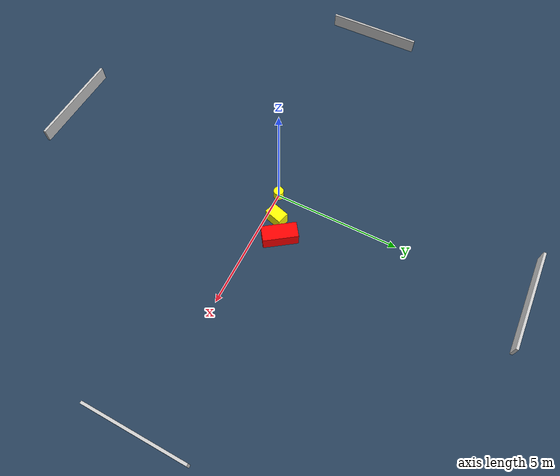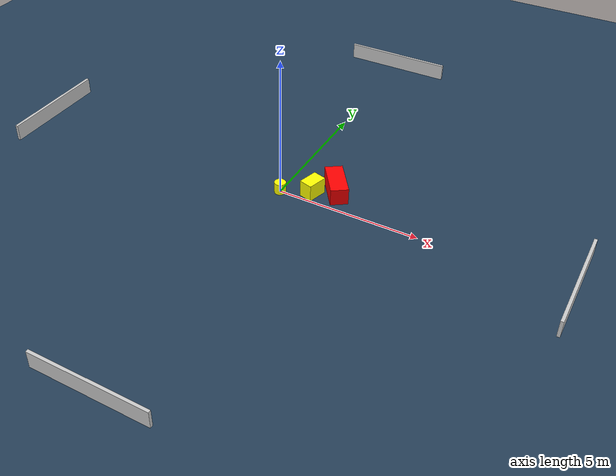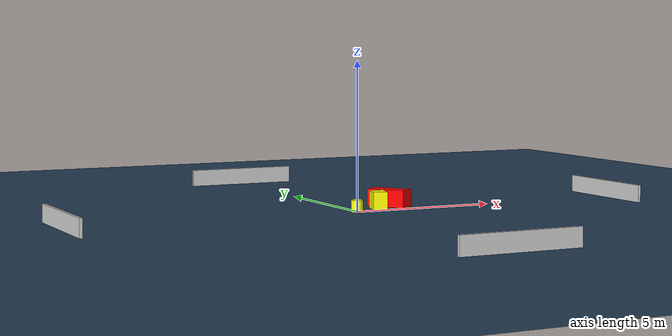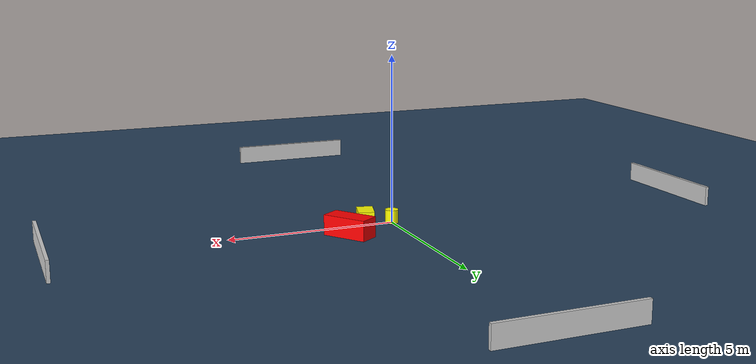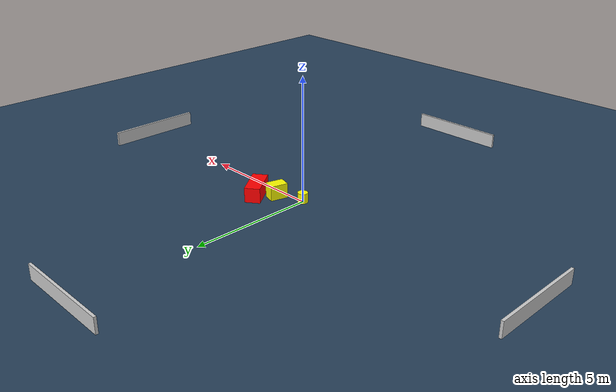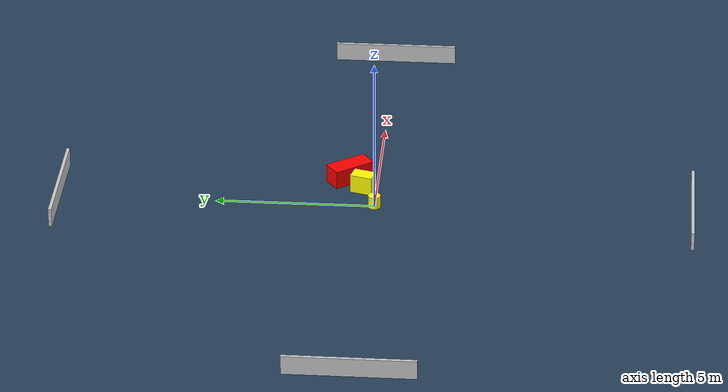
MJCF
<?xml version="1.0" ?>
<mujoco model="generated_environment">
  <option timestep="0.01" integrator="RK4" cone="elliptic"/>
  <default>
    <geom density="1"/>
  </default>
  <asset>
    <texture builtin="gradient" height="3072" name="skybox" rgb1="0.3 0.5 0.7" rgb2="0 0 0" type="skybox" width="512"/>
    <texture builtin="checker" height="300" name="groundplane" rgb1="0.2 0.3 0.4" rgb2="0.1 0.2 0.3" type="2d" width="300"/>
    <material name="groundplane" reflectance="0.2" texrepeat="5 5" texture="groundplane"/>
  </asset>
  <worldbody>
    <light dir="0 0 -1" directional="true" pos="0 0 1.5"/>
    <geom condim="3" friction="0.5 0.005 0.001" material="groundplane" name="floor" pos="0 0 0" size="0 0 0.05" type="plane"/>
    <body name="walls">
      <geom name="wall_1" condim="4" pos="-10.0 0.0 0.3" rgba="0.800000011920929 0.800000011920929 0.800000011920929 1.0" size="0.05 2.0 0.3" type="box"/>
      <geom name="wall_2" condim="4" pos="10.0 0.0 0.3" rgba="0.800000011920929 0.800000011920929 0.800000011920929 1.0" size="0.05 2.0 0.3" type="box"/>
      <geom name="wall_3" condim="4" pos="0.0 -10.0 0.3" rgba="0.800000011920929 0.800000011920929 0.800000011920929 1.0" size="2.0 0.05 0.3" type="box"/>
      <geom name="wall_4" condim="4" pos="0.0 10.0 0.3" rgba="0.800000011920929 0.800000011920929 0.800000011920929 1.0" size="2.0 0.05 0.3" type="box"/>
    </body>
    <body name="robot">
      <joint name="joint_x" type="slide" pos="0 0 0" axis="1 0 0"/>
      <joint name="joint_y" type="slide" pos="0 0 0" axis="0 1 0"/>
      <geom name="robot" type="cylinder" pos="0.0 0.0 0.2" size="0.2 0.2 0.0" mass="5.0" friction="1.0 0.005 0.0001" condim="4" rgba="1.0 1.0 0.0 1.0"/>
    </body>
    <body name="obstacle_1_movable">
      <geom name="obstacle_1_movable" condim="4" pos="1.01083810214868 0.43004353122427746 0.3" euler="0 0 344.1993491900605" friction="0.0 0.005 0.001" rgba="1.0 1.0 0.0 1.0" size="0.23910316852479013 0.3566855549505714 0.3" type="box" mass="0.1"/>
      <joint type="free"/>
    </body>
    <body name="obstacle_2_static">
      <geom name="obstacle_2_static" condim="4" pos="1.6738067970067148 0.8994989811427634 0.3" euler="0 0 215.2856034098183" friction="0.0 0.005 0.001" rgba="1.0 0.0 0.0 1.0" size="0.30685890423626605 0.68367446546638 0.3" type="box"/>
    </body>
  </worldbody>
  <actuator>
    <motor name="actuator_x" joint="joint_x" gear="1" ctrlrange="-1 1"/>
    <motor name="actuator_y" joint="joint_y" gear="1" ctrlrange="-1 1"/>
  </actuator>
</mujoco>
